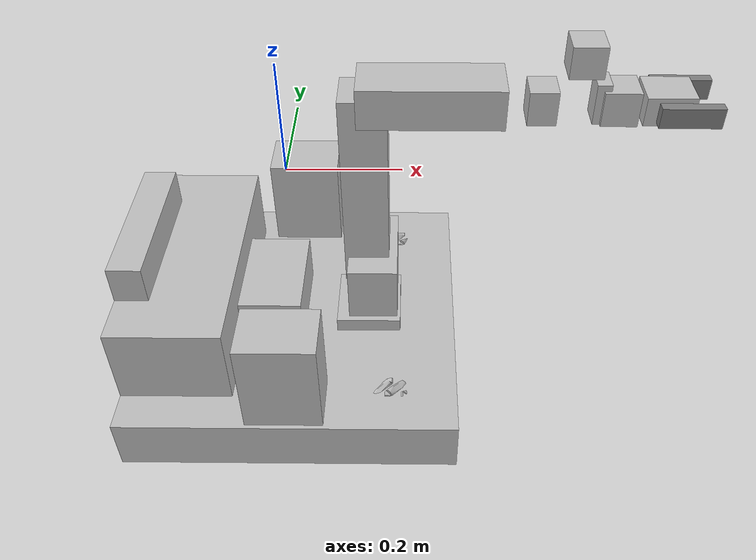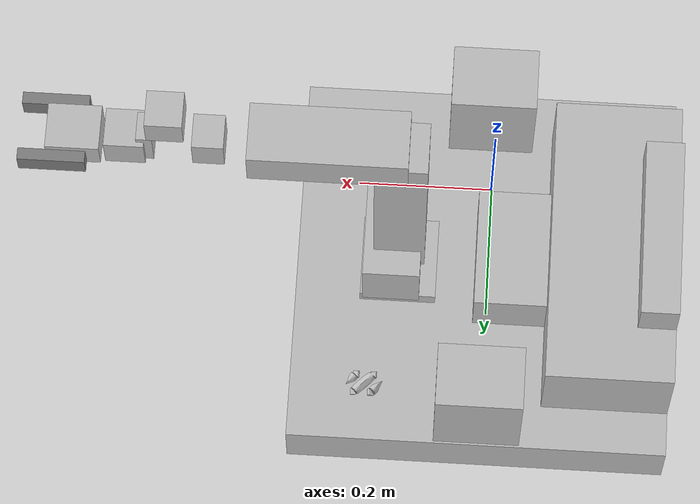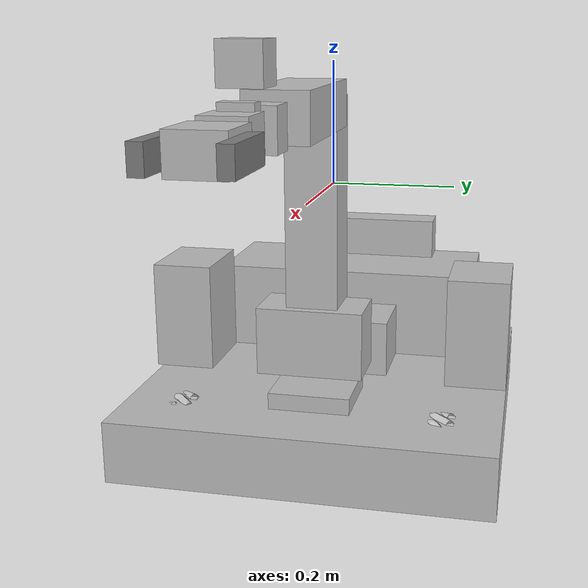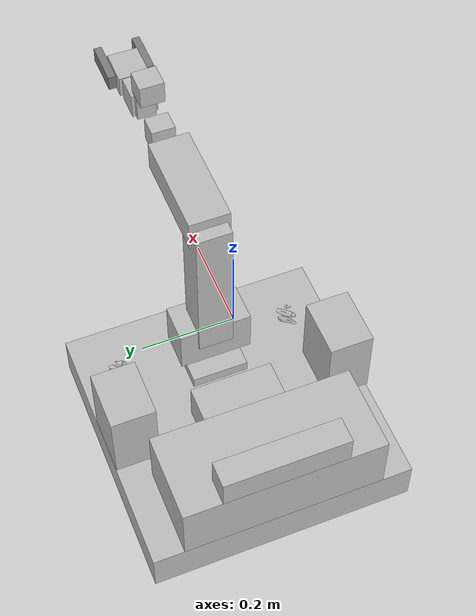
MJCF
<mujoco model="my_robot">
  <compiler angle="radian"/>

  <asset>
    <mesh name="part_363_part" content_type="model/stl" file="../../src/chassis_description/meshes/v1_1/part_363_part.stl" scale="0.001 0.001 0.001"/>
    <mesh name="part_364_part" content_type="model/stl" file="../../src/chassis_description/meshes/v1_1/part_364_part.stl" scale="0.001 0.001 0.001"/>
    <mesh name="part_365_part" content_type="model/stl" file="../../src/chassis_description/meshes/v1_1/part_365_part.stl" scale="0.001 0.001 0.001"/>
    <mesh name="part_366_part" content_type="model/stl" file="../../src/chassis_description/meshes/v1_1/part_366_part.stl" scale="0.001 0.001 0.001"/>
  </asset>

  <worldbody>
    <geom size="0.3 0.3 0.05" pos="0 0 -0.3801" type="box" rgba="0.75 0.75 0.75 1"/>
    <geom size="0.0675 0.05 0.09" pos="0 -0.25 -0.2301" type="box" rgba="0.75 0.75 0.75 1"/>
    <geom size="0.0675 0.05 0.09" pos="0 0.25 -0.2301" type="box" rgba="0.75 0.75 0.75 1"/>
    <geom size="0.1 0.23 0.075" pos="-0.2 0 -0.2551" type="box" rgba="0.75 0.75 0.75 1"/>
    <geom size="0.065 0.095 0.04665" pos="-0.05 0 -0.28345" type="box" rgba="0.75 0.75 0.75 1"/>
    <geom size="0.03 0.1425 0.035" pos="-0.27 0 -0.1451" type="box" rgba="0.75 0.75 0.75 1"/>
    <geom size="0.06 0.065 0.015" pos="0.1365 0 -0.3186" type="box" rgba="0.75 0.75 0.75 1"/>
    <geom pos="0 0 0" quat="0.707107 0.707107 0 0" type="mesh" rgba="0.75 0.75 0.75 1" mesh="part_363_part"/>
    <geom pos="0 0 0" quat="0.707107 0.707107 0 0" type="mesh" rgba="0.75 0.75 0.75 1" mesh="part_364_part"/>
    <geom pos="0 0 0" quat="0.707107 0.707107 0 0" type="mesh" rgba="0.75 0.75 0.75 1" mesh="part_365_part"/>
    <geom pos="0 0 0" quat="0.707107 0.707107 0 0" type="mesh" rgba="0.75 0.75 0.75 1" mesh="part_366_part"/>
    <body name="Link_1" pos="0.1365 0 -0.324118">
      <inertial pos="-0.00206361 -0.00571628 0.112331" quat="0.713011 0.686661 0.11539 -0.0824438" mass="2.45" diaginertia="0.0147694 0.0144456 0.00528539"/>
      <joint name="joint1" range="-2.3562 2.3562" actuatorfrcrange="-20 20" axis="0 0 -1"/>
      <geom size="0.0446225 0.083045 0.05321" pos="0.010497 0 0.1041" type="box" rgba="0.75 0.75 0.75 1"/>
      <body name="Link_2" pos="0 -0.035 0.1165">
        <inertial pos="7.06564e-05 0.0335122 0.161367" quat="0.999886 -0.0148428 -0.000148768 -0.00284099" mass="0.6" diaginertia="0.0105363 0.0101953 0.00115109"/>
        <joint name="joint2" range="-0.262 1.204" actuatorfrcrange="-20 20" axis="0 -1 0"/>
        <geom size="0.03995 0.040375 0.186821" pos="0 0.0365 0.174789" type="box" rgba="0.75 0.75 0.75 1"/>
        <body name="Link3" pos="0 0.07285 0.35">
          <inertial pos="0.126984 -0.0379011 0.000478224" quat="-0.00896942 0.712856 0.00495858 0.701235" mass="0.76" diaginertia="0.00609975 0.00569367 0.000994733"/>
          <joint name="joint3" range="-0.9599 1.221" actuatorfrcrange="-20 20" axis="0 1 0"/>
          <geom size="0.119755 0.0459 0.035275" pos="0.109111 -0.03785 0.0015" type="box" rgba="0.75 0.75 0.75 1"/>
          <body name="Link4" pos="0.232 -0.03785 -0.005">
            <inertial pos="0.0415977 0.000447238 -2.26882e-05" quat="-0.00714949 0.707259 0.00862685 0.706866" mass="0.47" diaginertia="0.000465334 0.000424757 0.000292167"/>
            <joint name="joint4" range="-3.1416 3.1416" actuatorfrcrange="-9 9" axis="1 0 0"/>
            <geom size="0.0236937 0.02686 0.02975" pos="0.055625 -0.0016 0" type="box" rgba="0.75 0.75 0.75 1"/>
            <body name="Link5" pos="0.05 -0.0382 0">
              <inertial pos="0.0563365 0.0382898 0.0570086" quat="0.00571785 0.430923 -0.00625628 0.902349" mass="0.46" diaginertia="0.000516052 0.000464441 0.000294784"/>
              <joint name="joint5" range="-1.57 1.57" actuatorfrcrange="-10 10" axis="0 1 0"/>
              <geom size="0.0276645 0.02805 0.0270852" pos="0.066883 0.0382 0.080585" type="box" rgba="0.75 0.75 0.75 1"/>
              <body name="Link6" pos="0.0629298 0.0382 0.0405">
                <inertial pos="0.0128285 -0.000258286 -0.0392039" quat="0.993152 -0.00585067 -0.11643 0.0077289" mass="0.31" diaginertia="0.000181681 0.000174273 0.000158328"/>
                <joint name="joint6" range="-1.57 1.57" actuatorfrcrange="-10 10" axis="0 0 -1"/>
                <geom size="0.0119 0.0220996 0.03485" pos="0.0365 0 -0.0355" type="box" rgba="0.75 0.75 0.75 1"/>
                <body name="Link7" pos="0.0465 0 -0.0405">
                  <inertial pos="0.0757975 0 0.0055" quat="0.520812 0.478283 0.478283 0.520812" mass="0.4" diaginertia="0.00152882 0.00152748 0.000341334"/>
                  <joint name="joint7" range="-3.1416 3.1416" actuatorfrcrange="-10 10" axis="1 0 0"/>
                  <geom size="0.02975 0.02975 0.02975" pos="0.02 0 0" type="box" rgba="0.75 0.75 0.75 1"/>
                  <geom size="0.04 0.035 0.025" pos="0.09645 0 0" type="box" rgba="0.75 0.75 0.75 1"/>
                  <body name="right_finger_Link" pos="0.12645 0.045 0">
                    <inertial pos="0 0 0" quat="0.5 0.5 0.5 0.5" mass="0.05" diaginertia="5e-05 5e-05 2e-05"/>
                    <joint name="joint_right_finger" type="slide" range="-0.04 0" actuatorfrcrange="-2 2" axis="0 1 0"/>
                    <geom size="0.05 0.009 0.0175" type="box"/>
                  </body>
                  <body name="left_finger_Link" pos="0.12645 -0.045 0">
                    <inertial pos="0 0 0" quat="0.5 0.5 0.5 0.5" mass="0.05" diaginertia="5e-05 5e-05 2e-05"/>
                    <joint name="joint_left_finger" type="slide" range="0 0.04" actuatorfrcrange="-2 2" axis="0 1 0"/>
                    <geom size="0.05 0.009 0.0175" type="box"/>
                  </body>
                </body>
              </body>
            </body>
          </body>
        </body>
      </body>
    </body>
  </worldbody>

  <equality>
    <joint joint1="joint_left_finger" joint2="joint_right_finger" polycoef="0 -1 0 0 0"/>
  </equality>

  <!--
    每个关节同时使用位置伺服和力矩 actuator：
    position actuator 接收运动控制器的目标位置，effort actuator 接收重力补偿力矩。
    两者在 MuJoCo 动力学中叠加执行。
  -->
  <actuator>
    <position name="joint1" joint="joint1" kp="120" kv="10"/>
    <position name="joint2" joint="joint2" kp="300" kv="10"/>
    <position name="joint3" joint="joint3" kp="300" kv="20"/>
    <position name="joint4" joint="joint4" kp="240"/>
    <position name="joint5" joint="joint5" kp="120"/>
    <position name="joint6" joint="joint6" kp="120"/>
    <position name="joint7" joint="joint7" kp="60"/>
    <position name="joint_right_finger" joint="joint_right_finger" kp="60" kv="10"/>

    <motor name="joint1_effort" joint="joint1" gear="1" ctrllimited="true" ctrlrange="-40 40"/>
    <motor name="joint2_effort" joint="joint2" gear="1" ctrllimited="true" ctrlrange="-40 40"/>
    <motor name="joint3_effort" joint="joint3" gear="1" ctrllimited="true" ctrlrange="-40 40"/>
    <motor name="joint4_effort" joint="joint4" gear="1" ctrllimited="true" ctrlrange="-9 9"/>
    <motor name="joint5_effort" joint="joint5" gear="1" ctrllimited="true" ctrlrange="-9 9"/>
    <motor name="joint6_effort" joint="joint6" gear="1" ctrllimited="true" ctrlrange="-7 7"/>
    <motor name="joint7_effort" joint="joint7" gear="1" ctrllimited="true" ctrlrange="-7 7"/>
    <motor name="joint_right_finger_effort" joint="joint_right_finger" gear="1" ctrlrange="-2 2"/>
  </actuator>
</mujoco>
